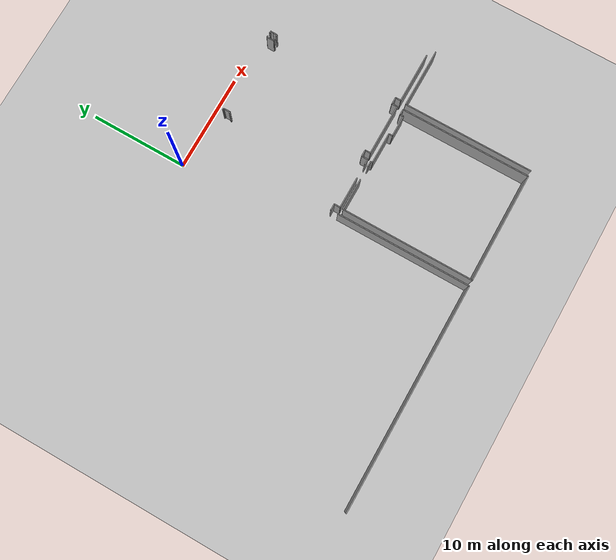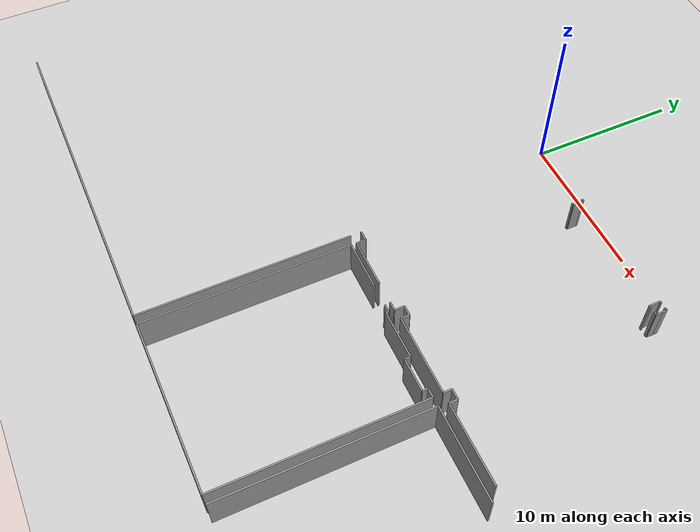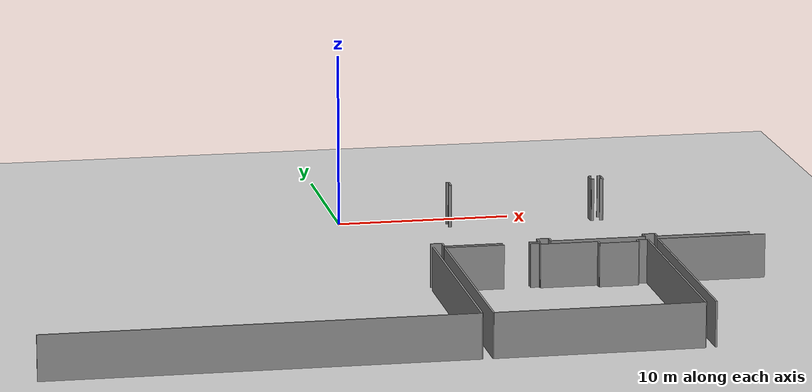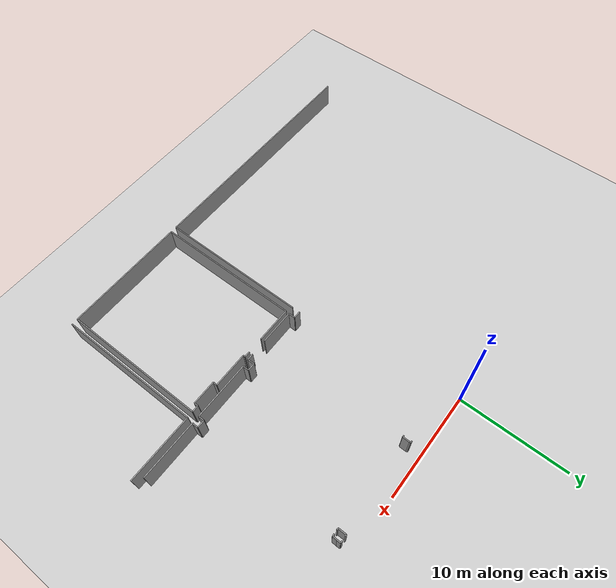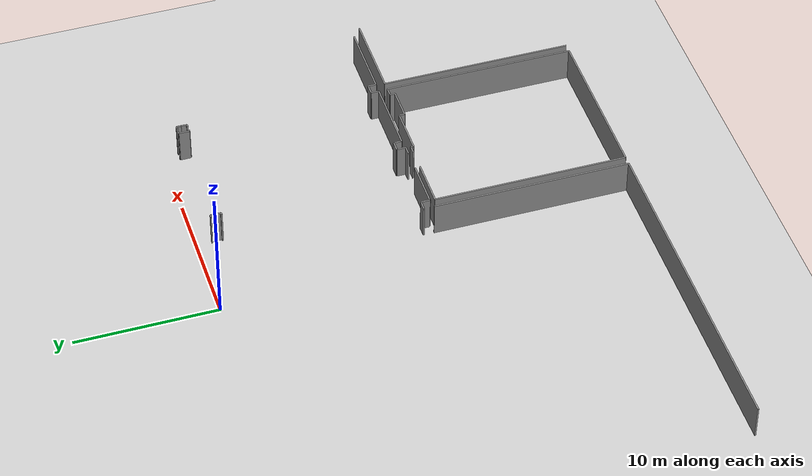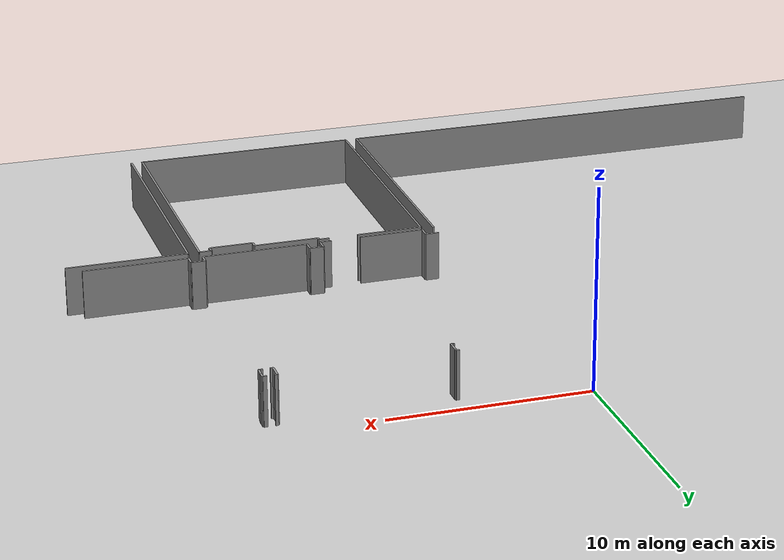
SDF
<sdf version="1.6">
 <world name="default">
  <model name="ground_plane">
   <static>1</static>
   <link name="link">
    <collision name="collision">
     <geometry><plane><normal>0 0 1</normal><size>100 100</size></plane></geometry>
     <surface><friction><ode><mu>100</mu><mu2>50</mu2></ode></friction></surface>
    </collision>
    <visual name="visual">
     <cast_shadows>0</cast_shadows>
     <geometry><plane><normal>0 0 1</normal><size>100 100</size></plane></geometry>
     <material>
      <script><uri>file://media/materials/scripts/gazebo.material</uri><name>Gazebo/Grey</name></script>
     </material>
    </visual>
   </link>
  </model>
  <model name="50010535_PLAN1">
   <static>1</static>
   <link name="Wall_275">
    <collision name="Wall_275_Collision">
     <geometry><box><size>13.8780074077 0.1 2.5</size></box></geometry>
     <pose>6.93900370387 0 1.25 0 0 0</pose>
    </collision>
    <visual name="Wall_275_Visual">
     <pose>6.93900370387 0 1.25 0 0 0</pose>
     <geometry><box><size>13.8780074077 0.1 2.5</size></box></geometry>
     <material>
      <script><uri>file://media/materials/scripts/gazebo.material</uri><name>Gazebo/Grey</name></script>
      <ambient>1 1 1 1</ambient>
     </material>
    </visual>
    <pose>105.270674638 -45.1188350921 0 0 0 -1.57079632679</pose>
   </link>
   <link name="Wall_276">
    <collision name="Wall_276_Collision">
     <geometry><box><size>23.324344047 0.1 2.5</size></box></geometry>
     <pose>11.6621720235 0 1.25 0 0 0</pose>
    </collision>
    <visual name="Wall_276_Visual">
     <pose>11.6621720235 0 1.25 0 0 0</pose>
     <geometry><box><size>23.324344047 0.1 2.5</size></box></geometry>
     <material>
      <script><uri>file://media/materials/scripts/gazebo.material</uri><name>Gazebo/Grey</name></script>
      <ambient>1 1 1 1</ambient>
     </material>
    </visual>
    <pose>105.270674638 -58.9968424998 0 0 0 3.14062297541</pose>
   </link>
   <link name="Wall_277">
    <collision name="Wall_277_Collision">
     <geometry><box><size>13.6213413976 0.1 2.5</size></box></geometry>
     <pose>6.81067069878 0 1.25 0 0 0</pose>
    </collision>
    <visual name="Wall_277_Visual">
     <pose>6.81067069878 0 1.25 0 0 0</pose>
     <geometry><box><size>13.6213413976 0.1 2.5</size></box></geometry>
     <material>
      <script><uri>file://media/materials/scripts/gazebo.material</uri><name>Gazebo/Grey</name></script>
      <ambient>1 1 1 1</ambient>
     </material>
    </visual>
    <pose>105.885148314 -58.9943012522 0 0 0 1.57079632679</pose>
   </link>
   <link name="Wall_278">
    <collision name="Wall_278_Collision">
     <geometry><box><size>3.33106738753 0.1 2.5</size></box></geometry>
     <pose>1.66553369377 0 1.25 0 0 0</pose>
    </collision>
    <visual name="Wall_278_Visual">
     <pose>1.66553369377 0 1.25 0 0 0</pose>
     <geometry><box><size>3.33106738753 0.1 2.5</size></box></geometry>
     <material>
      <script><uri>file://media/materials/scripts/gazebo.material</uri><name>Gazebo/Grey</name></script>
      <ambient>1 1 1 1</ambient>
     </material>
    </visual>
    <pose>105.885148314 -45.3729598546 0 0 0 0.0</pose>
   </link>
   <link name="Wall_279">
    <collision name="Wall_279_Collision">
     <geometry><box><size>0.528071256583 0.1 2.5</size></box></geometry>
     <pose>0.264035628292 0 1.25 0 0 0</pose>
    </collision>
    <visual name="Wall_279_Visual">
     <pose>0.264035628292 0 1.25 0 0 0</pose>
     <geometry><box><size>0.528071256583 0.1 2.5</size></box></geometry>
     <material>
      <script><uri>file://media/materials/scripts/gazebo.material</uri><name>Gazebo/Grey</name></script>
      <ambient>1 1 1 1</ambient>
     </material>
    </visual>
    <pose>110.695984193 -45.3729598546 0 0 0 0.0</pose>
   </link>
   <link name="Wall_280">
    <collision name="Wall_280_Collision">
     <geometry><box><size>0.185765201426 0.1 2.5</size></box></geometry>
     <pose>0.0928826007128 0 1.25 0 0 0</pose>
    </collision>
    <visual name="Wall_280_Visual">
     <pose>0.0928826007128 0 1.25 0 0 0</pose>
     <geometry><box><size>0.185765201426 0.1 2.5</size></box></geometry>
     <material>
      <script><uri>file://media/materials/scripts/gazebo.material</uri><name>Gazebo/Grey</name></script>
      <ambient>1 1 1 1</ambient>
     </material>
    </visual>
    <pose>111.22405545 -45.3729598546 0 0 0 -1.57079632679</pose>
   </link>
   <link name="Wall_281">
    <collision name="Wall_281_Collision">
     <geometry><box><size>3.25508408353 0.1 2.5</size></box></geometry>
     <pose>1.62754204177 0 1.25 0 0 0</pose>
    </collision>
    <visual name="Wall_281_Visual">
     <pose>1.62754204177 0 1.25 0 0 0</pose>
     <geometry><box><size>3.25508408353 0.1 2.5</size></box></geometry>
     <material>
      <script><uri>file://media/materials/scripts/gazebo.material</uri><name>Gazebo/Grey</name></script>
      <ambient>1 1 1 1</ambient>
     </material>
    </visual>
    <pose>111.22405545 -45.5587250561 0 0 0 0.0</pose>
   </link>
   <link name="Wall_282">
    <collision name="Wall_282_Collision">
     <geometry><box><size>0.381187143828 0.1 2.5</size></box></geometry>
     <pose>0.190593571914 0 1.25 0 0 0</pose>
    </collision>
    <visual name="Wall_282_Visual">
     <pose>0.190593571914 0 1.25 0 0 0</pose>
     <geometry><box><size>0.381187143828 0.1 2.5</size></box></geometry>
     <material>
      <script><uri>file://media/materials/scripts/gazebo.material</uri><name>Gazebo/Grey</name></script>
      <ambient>1 1 1 1</ambient>
     </material>
    </visual>
    <pose>114.479139534 -45.5587250561 0 0 0 -1.57079632679</pose>
   </link>
   <link name="Wall_283">
    <collision name="Wall_283_Collision">
     <geometry><box><size>2.20224519228 0.1 2.5</size></box></geometry>
     <pose>1.10112259614 0 1.25 0 0 0</pose>
    </collision>
    <visual name="Wall_283_Visual">
     <pose>1.10112259614 0 1.25 0 0 0</pose>
     <geometry><box><size>2.20224519228 0.1 2.5</size></box></geometry>
     <material>
      <script><uri>file://media/materials/scripts/gazebo.material</uri><name>Gazebo/Grey</name></script>
      <ambient>1 1 1 1</ambient>
     </material>
    </visual>
    <pose>114.479139534 -45.9399121999 0 0 0 0.0</pose>
   </link>
   <link name="Wall_284">
    <collision name="Wall_284_Collision">
     <geometry><box><size>0.365685533313 0.1 2.5</size></box></geometry>
     <pose>0.182842766656 0 1.25 0 0 0</pose>
    </collision>
    <visual name="Wall_284_Visual">
     <pose>0.182842766656 0 1.25 0 0 0</pose>
     <geometry><box><size>0.365685533313 0.1 2.5</size></box></geometry>
     <material>
      <script><uri>file://media/materials/scripts/gazebo.material</uri><name>Gazebo/Grey</name></script>
      <ambient>1 1 1 1</ambient>
     </material>
    </visual>
    <pose>116.681384726 -45.9399121999 0 0 0 1.57079632679</pose>
   </link>
   <link name="Wall_285">
    <collision name="Wall_285_Collision">
     <geometry><box><size>0.60634168345 0.1 2.5</size></box></geometry>
     <pose>0.303170841725 0 1.25 0 0 0</pose>
    </collision>
    <visual name="Wall_285_Visual">
     <pose>0.303170841725 0 1.25 0 0 0</pose>
     <geometry><box><size>0.60634168345 0.1 2.5</size></box></geometry>
     <material>
      <script><uri>file://media/materials/scripts/gazebo.material</uri><name>Gazebo/Grey</name></script>
      <ambient>1 1 1 1</ambient>
     </material>
    </visual>
    <pose>116.681384726 -45.5742266666 0 0 0 0.0</pose>
   </link>
   <link name="Wall_286">
    <collision name="Wall_286_Collision">
     <geometry><box><size>13.407876597 0.1 2.5</size></box></geometry>
     <pose>6.70393829851 0 1.25 0 0 0</pose>
    </collision>
    <visual name="Wall_286_Visual">
     <pose>6.70393829851 0 1.25 0 0 0</pose>
     <geometry><box><size>13.407876597 0.1 2.5</size></box></geometry>
     <material>
      <script><uri>file://media/materials/scripts/gazebo.material</uri><name>Gazebo/Grey</name></script>
      <ambient>1 1 1 1</ambient>
     </material>
    </visual>
    <pose>117.287726409 -45.5742266666 0 0 0 -1.57079632679</pose>
   </link>
   <link name="Wall_287">
    <collision name="Wall_287_Collision">
     <geometry><box><size>11.4025846202 0.1 2.5</size></box></geometry>
     <pose>5.70129231008 0 1.25 0 0 0</pose>
    </collision>
    <visual name="Wall_287_Visual">
     <pose>5.70129231008 0 1.25 0 0 0</pose>
     <geometry><box><size>11.4025846202 0.1 2.5</size></box></geometry>
     <material>
      <script><uri>file://media/materials/scripts/gazebo.material</uri><name>Gazebo/Grey</name></script>
      <ambient>1 1 1 1</ambient>
     </material>
    </visual>
    <pose>117.287726409 -58.9821032636 0 0 0 -3.14052289692</pose>
   </link>
   <link name="Wall_288">
    <collision name="Wall_288_Collision">
     <geometry><box><size>13.4223617085 0.1 2.5</size></box></geometry>
     <pose>6.71118085424 0 1.25 0 0 0</pose>
    </collision>
    <visual name="Wall_288_Visual">
     <pose>6.71118085424 0 1.25 0 0 0</pose>
     <geometry><box><size>13.4223617085 0.1 2.5</size></box></geometry>
     <material>
      <script><uri>file://media/materials/scripts/gazebo.material</uri><name>Gazebo/Grey</name></script>
      <ambient>1 1 1 1</ambient>
     </material>
    </visual>
    <pose>117.87043449 -58.9780372674 0 0 0 1.57079632679</pose>
   </link>
   <link name="Wall_289">
    <collision name="Wall_289_Collision">
     <geometry><box><size>6.11576653558 0.1 2.5</size></box></geometry>
     <pose>3.05788326779 0 1.25 0 0 0</pose>
    </collision>
    <visual name="Wall_289_Visual">
     <pose>3.05788326779 0 1.25 0 0 0</pose>
     <geometry><box><size>6.11576653558 0.1 2.5</size></box></geometry>
     <material>
      <script><uri>file://media/materials/scripts/gazebo.material</uri><name>Gazebo/Grey</name></script>
      <ambient>1 1 1 1</ambient>
     </material>
    </visual>
    <pose>117.87043449 -45.5556755589 0 0 0 0.0</pose>
   </link>
   <link name="Wall_346">
    <collision name="Wall_346_Collision">
     <geometry><box><size>0.108257148847 0.1 2.5</size></box></geometry>
     <pose>0.0541285744236 0 1.25 0 0 0</pose>
    </collision>
    <visual name="Wall_346_Visual">
     <pose>0.0541285744236 0 1.25 0 0 0</pose>
     <geometry><box><size>0.108257148847 0.1 2.5</size></box></geometry>
     <material>
      <script><uri>file://media/materials/scripts/gazebo.material</uri><name>Gazebo/Grey</name></script>
      <ambient>1 1 1 1</ambient>
     </material>
    </visual>
    <pose>108.912790735 -30.7074198078 0 0 0 1.57079632679</pose>
   </link>
   <link name="Wall_347">
    <collision name="Wall_347_Collision">
     <geometry><box><size>0.159082101358 0.1 2.5</size></box></geometry>
     <pose>0.0795410506788 0 1.25 0 0 0</pose>
    </collision>
    <visual name="Wall_347_Visual">
     <pose>0.0795410506788 0 1.25 0 0 0</pose>
     <geometry><box><size>0.159082101358 0.1 2.5</size></box></geometry>
     <material>
      <script><uri>file://media/materials/scripts/gazebo.material</uri><name>Gazebo/Grey</name></script>
      <ambient>1 1 1 1</ambient>
     </material>
    </visual>
    <pose>108.912790735 -30.5991626589 0 0 0 3.14159265359</pose>
   </link>
   <link name="Wall_348">
    <collision name="Wall_348_Collision">
     <geometry><box><size>0.137989746066 0.1 2.5</size></box></geometry>
     <pose>0.0689948730329 0 1.25 0 0 0</pose>
    </collision>
    <visual name="Wall_348_Visual">
     <pose>0.0689948730329 0 1.25 0 0 0</pose>
     <geometry><box><size>0.137989746066 0.1 2.5</size></box></geometry>
     <material>
      <script><uri>file://media/materials/scripts/gazebo.material</uri><name>Gazebo/Grey</name></script>
      <ambient>1 1 1 1</ambient>
     </material>
    </visual>
    <pose>117.400303679 -30.586202296 0 0 0 3.14159265359</pose>
   </link>
   <link name="Wall_349">
    <collision name="Wall_349_Collision">
     <geometry><box><size>0.743060805703 0.1 2.5</size></box></geometry>
     <pose>0.371530402851 0 1.25 0 0 0</pose>
    </collision>
    <visual name="Wall_349_Visual">
     <pose>0.371530402851 0 1.25 0 0 0</pose>
     <geometry><box><size>0.743060805703 0.1 2.5</size></box></geometry>
     <material>
      <script><uri>file://media/materials/scripts/gazebo.material</uri><name>Gazebo/Grey</name></script>
      <ambient>1 1 1 1</ambient>
     </material>
    </visual>
    <pose>117.262313933 -30.586202296 0 0 0 -1.57079632679</pose>
   </link>
   <link name="Wall_350">
    <collision name="Wall_350_Collision">
     <geometry><box><size>0.146121738467 0.1 2.5</size></box></geometry>
     <pose>0.0730608692337 0 1.25 0 0 0</pose>
    </collision>
    <visual name="Wall_350_Visual">
     <pose>0.0730608692337 0 1.25 0 0 0</pose>
     <geometry><box><size>0.146121738467 0.1 2.5</size></box></geometry>
     <material>
      <script><uri>file://media/materials/scripts/gazebo.material</uri><name>Gazebo/Grey</name></script>
      <ambient>1 1 1 1</ambient>
     </material>
    </visual>
    <pose>117.262313933 -31.3292631017 0 0 0 0.0</pose>
   </link>
   <link name="Wall_351">
    <collision name="Wall_351_Collision">
     <geometry><box><size>0.150695984193 0.1 2.5</size></box></geometry>
     <pose>0.0753479920967 0 1.25 0 0 0</pose>
    </collision>
    <visual name="Wall_351_Visual">
     <pose>0.0753479920967 0 1.25 0 0 0</pose>
     <geometry><box><size>0.150695984193 0.1 2.5</size></box></geometry>
     <material>
      <script><uri>file://media/materials/scripts/gazebo.material</uri><name>Gazebo/Grey</name></script>
      <ambient>1 1 1 1</ambient>
     </material>
    </visual>
    <pose>108.760315877 -31.3292631017 0 0 0 0.0</pose>
   </link>
   <link name="Wall_352">
    <collision name="Wall_352_Collision">
     <geometry><box><size>0.621845838323 0.1 2.5</size></box></geometry>
     <pose>0.310922919162 0 1.25 0 0 0</pose>
    </collision>
    <visual name="Wall_352_Visual">
     <pose>0.310922919162 0 1.25 0 0 0</pose>
     <geometry><box><size>0.621845838323 0.1 2.5</size></box></geometry>
     <material>
      <script><uri>file://media/materials/scripts/gazebo.material</uri><name>Gazebo/Grey</name></script>
      <ambient>1 1 1 1</ambient>
     </material>
    </visual>
    <pose>108.911011861 -31.3292631017 0 0 0 1.56793568891</pose>
   </link>
   <link name="Wall_353">
    <collision name="Wall_353_Collision">
     <geometry><box><size>0.322230198916 0.1 2.5</size></box></geometry>
     <pose>0.161115099458 0 1.25 0 0 0</pose>
    </collision>
    <visual name="Wall_353_Visual">
     <pose>0.161115099458 0 1.25 0 0 0</pose>
     <geometry><box><size>0.322230198916 0.1 2.5</size></box></geometry>
     <material>
      <script><uri>file://media/materials/scripts/gazebo.material</uri><name>Gazebo/Grey</name></script>
      <ambient>1 1 1 1</ambient>
     </material>
    </visual>
    <pose>117.943114172 -30.9135149902 0 0 0 1.57079632679</pose>
   </link>
   <link name="Wall_354">
    <collision name="Wall_354_Collision">
     <geometry><box><size>0.191101821439 0.1 2.5</size></box></geometry>
     <pose>0.0955509107196 0 1.25 0 0 0</pose>
    </collision>
    <visual name="Wall_354_Visual">
     <pose>0.0955509107196 0 1.25 0 0 0</pose>
     <geometry><box><size>0.191101821439 0.1 2.5</size></box></geometry>
     <material>
      <script><uri>file://media/materials/scripts/gazebo.material</uri><name>Gazebo/Grey</name></script>
      <ambient>1 1 1 1</ambient>
     </material>
    </visual>
    <pose>117.943114172 -30.5912847913 0 0 0 3.14159265359</pose>
   </link>
   <link name="Wall_358">
    <collision name="Wall_358_Collision">
     <geometry><box><size>0.1811909557 0.1 2.5</size></box></geometry>
     <pose>0.0905954778499 0 1.25 0 0 0</pose>
    </collision>
    <visual name="Wall_358_Visual">
     <pose>0.0905954778499 0 1.25 0 0 0</pose>
     <geometry><box><size>0.1811909557 0.1 2.5</size></box></geometry>
     <material>
      <script><uri>file://media/materials/scripts/gazebo.material</uri><name>Gazebo/Grey</name></script>
      <ambient>1 1 1 1</ambient>
     </material>
    </visual>
    <pose>117.744642732 -31.3221476084 0 0 0 0.0</pose>
   </link>
   <link name="Wall_359">
    <collision name="Wall_359_Collision">
     <geometry><box><size>0.408997838339 0.1 2.5</size></box></geometry>
     <pose>0.20449891917 0 1.25 0 0 0</pose>
    </collision>
    <visual name="Wall_359_Visual">
     <pose>0.20449891917 0 1.25 0 0 0</pose>
     <geometry><box><size>0.408997838339 0.1 2.5</size></box></geometry>
     <material>
      <script><uri>file://media/materials/scripts/gazebo.material</uri><name>Gazebo/Grey</name></script>
      <ambient>1 1 1 1</ambient>
     </material>
    </visual>
    <pose>117.925833688 -31.3221476084 0 0 0 1.52853295109</pose>
   </link>
   <link name="Wall_438">
    <collision name="Wall_438_Collision">
     <geometry><box><size>5.28452443727 0.1 2.5</size></box></geometry>
     <pose>2.64226221864 0 1.25 0 0 0</pose>
    </collision>
    <visual name="Wall_438_Visual">
     <pose>2.64226221864 0 1.25 0 0 0</pose>
     <geometry><box><size>5.28452443727 0.1 2.5</size></box></geometry>
     <material>
      <script><uri>file://media/materials/scripts/gazebo.material</uri><name>Gazebo/Grey</name></script>
      <ambient>1 1 1 1</ambient>
     </material>
    </visual>
    <pose>123.255338208 -44.9490797507 0 0 0 3.14159265359</pose>
   </link>
   <link name="Wall_439">
    <collision name="Wall_439_Collision">
     <geometry><box><size>0.56161572524 0.1 2.5</size></box></geometry>
     <pose>0.28080786262 0 1.25 0 0 0</pose>
    </collision>
    <visual name="Wall_439_Visual">
     <pose>0.28080786262 0 1.25 0 0 0</pose>
     <geometry><box><size>0.56161572524 0.1 2.5</size></box></geometry>
     <material>
      <script><uri>file://media/materials/scripts/gazebo.material</uri><name>Gazebo/Grey</name></script>
      <ambient>1 1 1 1</ambient>
     </material>
    </visual>
    <pose>117.970813771 -44.9490797507 0 0 0 1.57079632679</pose>
   </link>
   <link name="Wall_440">
    <collision name="Wall_440_Collision">
     <geometry><box><size>0.703671467507 0.1 2.5</size></box></geometry>
     <pose>0.351835733753 0 1.25 0 0 0</pose>
    </collision>
    <visual name="Wall_440_Visual">
     <pose>0.351835733753 0 1.25 0 0 0</pose>
     <geometry><box><size>0.703671467507 0.1 2.5</size></box></geometry>
     <material>
      <script><uri>file://media/materials/scripts/gazebo.material</uri><name>Gazebo/Grey</name></script>
      <ambient>1 1 1 1</ambient>
     </material>
    </visual>
    <pose>117.970813771 -44.3874640255 0 0 0 3.14159265359</pose>
   </link>
   <link name="Wall_441">
    <collision name="Wall_441_Collision">
     <geometry><box><size>0.552721358551 0.1 2.5</size></box></geometry>
     <pose>0.276360679275 0 1.25 0 0 0</pose>
    </collision>
    <visual name="Wall_441_Visual">
     <pose>0.276360679275 0 1.25 0 0 0</pose>
     <geometry><box><size>0.552721358551 0.1 2.5</size></box></geometry>
     <material>
      <script><uri>file://media/materials/scripts/gazebo.material</uri><name>Gazebo/Grey</name></script>
      <ambient>1 1 1 1</ambient>
     </material>
    </visual>
    <pose>117.267142304 -44.3874640255 0 0 0 -1.57079632679</pose>
   </link>
   <link name="Wall_442">
    <collision name="Wall_442_Collision">
     <geometry><box><size>5.31603590783 0.1 2.5</size></box></geometry>
     <pose>2.65801795391 0 1.25 0 0 0</pose>
    </collision>
    <visual name="Wall_442_Visual">
     <pose>2.65801795391 0 1.25 0 0 0</pose>
     <geometry><box><size>5.31603590783 0.1 2.5</size></box></geometry>
     <material>
      <script><uri>file://media/materials/scripts/gazebo.material</uri><name>Gazebo/Grey</name></script>
      <ambient>1 1 1 1</ambient>
     </material>
    </visual>
    <pose>117.267142304 -44.940185384 0 0 0 3.14159265359</pose>
   </link>
   <link name="Wall_443">
    <collision name="Wall_443_Collision">
     <geometry><box><size>0.562378099528 0.1 2.5</size></box></geometry>
     <pose>0.281189049764 0 1.25 0 0 0</pose>
    </collision>
    <visual name="Wall_443_Visual">
     <pose>0.281189049764 0 1.25 0 0 0</pose>
     <geometry><box><size>0.562378099528 0.1 2.5</size></box></geometry>
     <material>
      <script><uri>file://media/materials/scripts/gazebo.material</uri><name>Gazebo/Grey</name></script>
      <ambient>1 1 1 1</ambient>
     </material>
    </visual>
    <pose>111.951106396 -44.940185384 0 0 0 1.57079632679</pose>
   </link>
   <link name="Wall_444">
    <collision name="Wall_444_Collision">
     <geometry><box><size>0.682833236978 0.1 2.5</size></box></geometry>
     <pose>0.341416618489 0 1.25 0 0 0</pose>
    </collision>
    <visual name="Wall_444_Visual">
     <pose>0.341416618489 0 1.25 0 0 0</pose>
     <geometry><box><size>0.682833236978 0.1 2.5</size></box></geometry>
     <material>
      <script><uri>file://media/materials/scripts/gazebo.material</uri><name>Gazebo/Grey</name></script>
      <ambient>1 1 1 1</ambient>
     </material>
    </visual>
    <pose>111.951106396 -44.3778072845 0 0 0 3.14159265359</pose>
   </link>
   <link name="Wall_445">
    <collision name="Wall_445_Collision">
     <geometry><box><size>0.644714522595 0.1 2.5</size></box></geometry>
     <pose>0.322357261297 0 1.25 0 0 0</pose>
    </collision>
    <visual name="Wall_445_Visual">
     <pose>0.322357261297 0 1.25 0 0 0</pose>
     <geometry><box><size>0.644714522595 0.1 2.5</size></box></geometry>
     <material>
      <script><uri>file://media/materials/scripts/gazebo.material</uri><name>Gazebo/Grey</name></script>
      <ambient>1 1 1 1</ambient>
     </material>
    </visual>
    <pose>111.268273159 -44.3778072845 0 0 0 -1.57079632679</pose>
   </link>
   <link name="Wall_446">
    <collision name="Wall_446_Collision">
     <geometry><box><size>0.58448695387 0.1 2.5</size></box></geometry>
     <pose>0.292243476935 0 1.25 0 0 0</pose>
    </collision>
    <visual name="Wall_446_Visual">
     <pose>0.292243476935 0 1.25 0 0 0</pose>
     <geometry><box><size>0.58448695387 0.1 2.5</size></box></geometry>
     <material>
      <script><uri>file://media/materials/scripts/gazebo.material</uri><name>Gazebo/Grey</name></script>
      <ambient>1 1 1 1</ambient>
     </material>
    </visual>
    <pose>111.268273159 -45.0225218071 0 0 0 3.14159265359</pose>
   </link>
   <link name="Wall_447">
    <collision name="Wall_447_Collision">
     <geometry><box><size>3.26296195117 0.1 2.5</size></box></geometry>
     <pose>1.63148097558 0 1.25 0 0 0</pose>
    </collision>
    <visual name="Wall_447_Visual">
     <pose>1.63148097558 0 1.25 0 0 0</pose>
     <geometry><box><size>3.26296195117 0.1 2.5</size></box></geometry>
     <material>
      <script><uri>file://media/materials/scripts/gazebo.material</uri><name>Gazebo/Grey</name></script>
      <ambient>1 1 1 1</ambient>
     </material>
    </visual>
    <pose>109.178351111 -45.0225218071 0 0 0 3.14159265359</pose>
   </link>
   <link name="Wall_448">
    <collision name="Wall_448_Collision">
     <geometry><box><size>0.626417539691 0.1 2.5</size></box></geometry>
     <pose>0.313208769846 0 1.25 0 0 0</pose>
    </collision>
    <visual name="Wall_448_Visual">
     <pose>0.313208769846 0 1.25 0 0 0</pose>
     <geometry><box><size>0.626417539691 0.1 2.5</size></box></geometry>
     <material>
      <script><uri>file://media/materials/scripts/gazebo.material</uri><name>Gazebo/Grey</name></script>
      <ambient>1 1 1 1</ambient>
     </material>
    </visual>
    <pose>105.91538916 -45.0225218071 0 0 0 1.57079632679</pose>
   </link>
   <link name="Wall_449">
    <collision name="Wall_449_Collision">
     <geometry><box><size>0.669872874088 0.1 2.5</size></box></geometry>
     <pose>0.334936437044 0 1.25 0 0 0</pose>
    </collision>
    <visual name="Wall_449_Visual">
     <pose>0.334936437044 0 1.25 0 0 0</pose>
     <geometry><box><size>0.669872874088 0.1 2.5</size></box></geometry>
     <material>
      <script><uri>file://media/materials/scripts/gazebo.material</uri><name>Gazebo/Grey</name></script>
      <ambient>1 1 1 1</ambient>
     </material>
    </visual>
    <pose>105.91538916 -44.3961042674 0 0 0 3.14159265359</pose>
   </link>
   <pose>-102.6 29.5103111122 0 0 0 0</pose>
  </model>
 </world>
</sdf>
